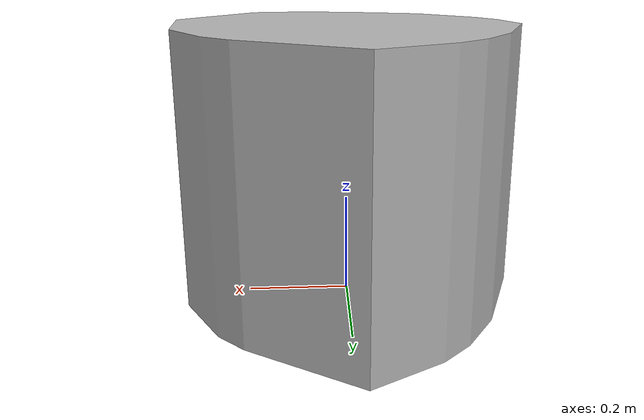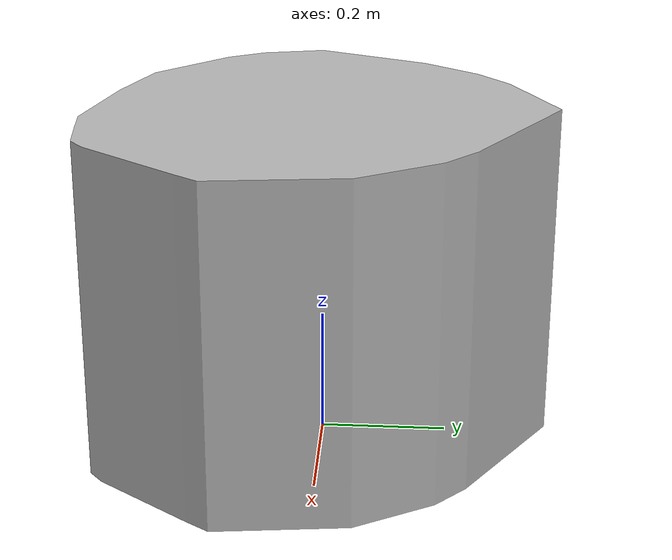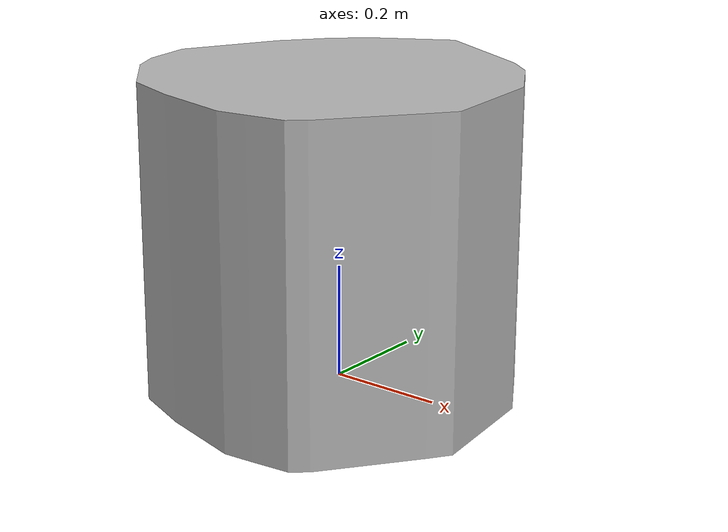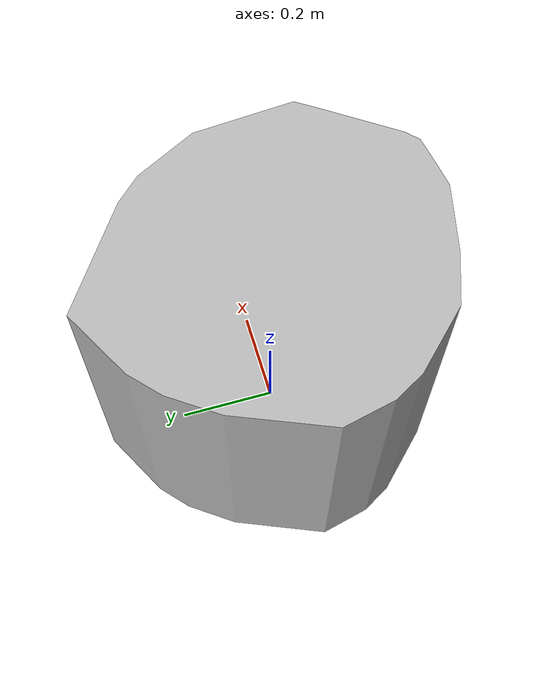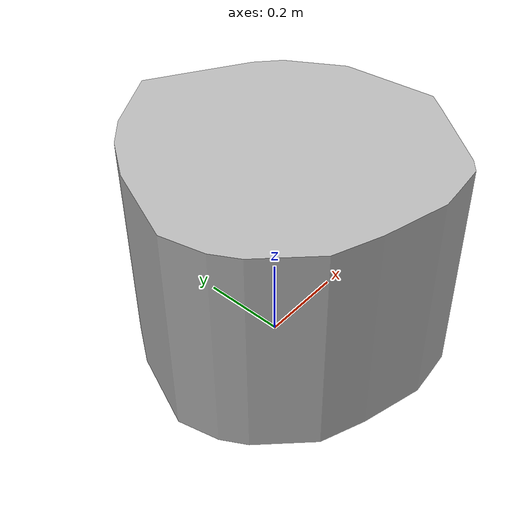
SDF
<?xml version="1.0"?>
<sdf version="1.6">
  <model name="rock_25">
    <static>true</static>
    <link name="link">

      <visual name="visual_glb">
        <pose>0 0 0 0 0 0</pose>
        <geometry>
          <mesh>
            <uri>meshes/25.glb</uri>
          </mesh>
        </geometry>
      </visual>

      <visual name="visual_collision">
        <pose>0 0 0 0 0 0</pose>
        <geometry>
          <mesh>
            <uri>meshes/25.stl</uri>
          </mesh>
        </geometry>
        <material>
            <ambient>1 1 1 1</ambient>
            <diffuse>1 1 1 1</diffuse>
            <specular>0.1 0.1 0.1 1</specular>
        </material>
        <transparency>1</transparency>
      </visual>

      <collision name="collision">
        <pose>0 0 0 0 0 0</pose>
        <geometry>
          <mesh>
            <uri>meshes/25.stl</uri>
          </mesh>
        </geometry>
      </collision>

    </link>
  </model>
</sdf>
